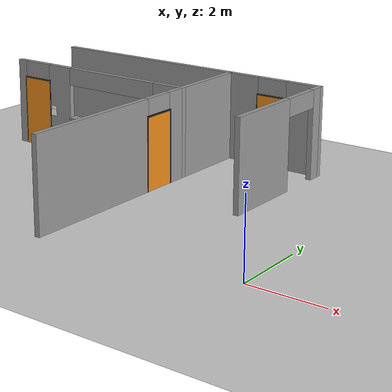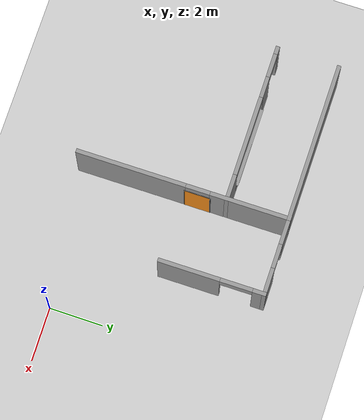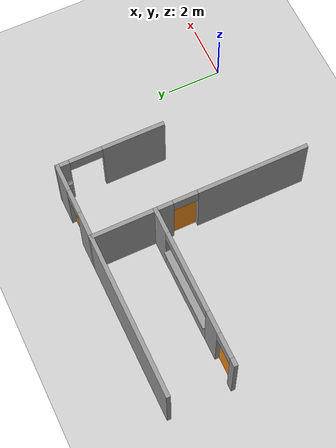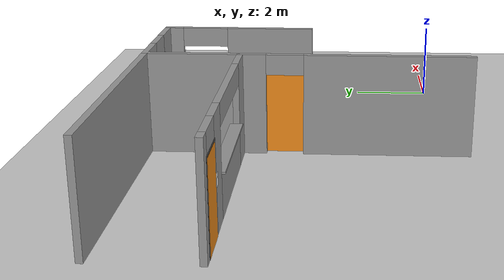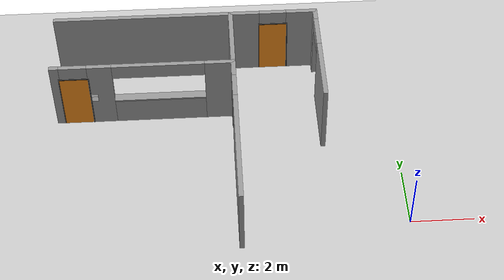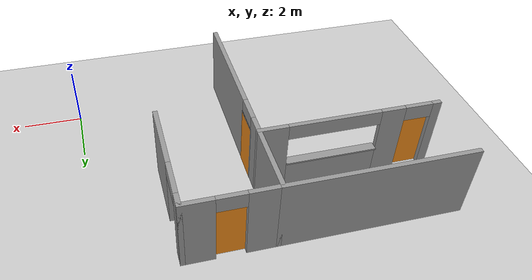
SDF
<sdf version="1.6">
 <world name="default">
  <model name="ground_plane">
   <static>1</static>
   <link name="link">
    <collision name="collision">
     <geometry><plane><normal>0 0 1</normal><size>100 100</size></plane></geometry>
     <surface><friction><ode><mu>100</mu><mu2>50</mu2></ode></friction></surface>
    </collision>
    <visual name="visual">
     <cast_shadows>0</cast_shadows>
     <geometry><plane><normal>0 0 1</normal><size>100 100</size></plane></geometry>
     <material>
      <script><uri>file://media/materials/scripts/gazebo.material</uri><name>Gazebo/Grey</name></script>
     </material>
    </visual>
   </link>
  </model>
  <model name="room_door_0_clone">
   <link name="base_link">
    <inertial>
     <pose>0 0 1.00051 0 -0 0</pose>
     <mass>2001</mass>
     <inertia><ixx>464.85</ixx><ixy>0</ixy><ixz>0</ixz><iyy>4.0501</iyy><iyz>0</iyz><izz>463.8</izz></inertia>
    </inertial>
    <collision name="base_link_fixed_joint_lump__top_post_collision">
     <pose>0 0 2.025 0 -0 0</pose>
     <geometry><box><size>0.01 1 0.05</size></box></geometry>
    </collision>
    <collision name="base_link_fixed_joint_lump__left_post_collision_1">
     <pose>0 -0.48 1 0 -0 0</pose>
     <geometry><box><size>0.01 0.04 2</size></box></geometry>
    </collision>
    <collision name="base_link_fixed_joint_lump__right_post_collision_2">
     <pose>0 0.48 1 0 -0 0</pose>
     <geometry><box><size>0.01 0.04 2</size></box></geometry>
    </collision>
    <visual name="base_link_fixed_joint_lump__top_post_visual">
     <pose>0 0 2.025 0 -0 0</pose>
     <geometry><box><size>0.01 1 0.05</size></box></geometry>
     <material>
      <script><name>Gazebo/Black</name><uri>file://media/materials/scripts/gazebo.material</uri></script>
     </material>
    </visual>
    <visual name="base_link_fixed_joint_lump__left_post_visual_1">
     <pose>0 -0.48 1 0 -0 0</pose>
     <geometry><box><size>0.01 0.04 2</size></box></geometry>
     <material>
      <script><name>Gazebo/Black</name><uri>file://media/materials/scripts/gazebo.material</uri></script>
     </material>
    </visual>
    <visual name="base_link_fixed_joint_lump__right_post_visual_2">
     <pose>0 0.48 1 0 -0 0</pose>
     <geometry><box><size>0.01 0.04 2</size></box></geometry>
     <material>
      <script><name>Gazebo/Black</name><uri>file://media/materials/scripts/gazebo.material</uri></script>
     </material>
    </visual>
   </link>
   <link name="door_front">
    <pose>0.005 -0.46 1 0 -0 0</pose>
    <inertial>
     <mass>1</mass>
     <inertia><ixx>1</ixx><ixy>0</ixy><ixz>0</ixz><iyy>1</iyy><iyz>0</iyz><izz>1</izz></inertia>
    </inertial>
    <collision name="door_front_collision">
     <pose>-0.005 0.46 0.005 0 -0 0</pose>
     <geometry><box><size>0.01 0.92 1.99</size></box></geometry>
    </collision>
    <visual name="door_front_visual">
     <pose>-0.005 0.46 0.005 0 -0 0</pose>
     <geometry><box><size>0.01 0.92 1.99</size></box></geometry>
     <material>
      <script><name>Gazebo/Orange</name><uri>file://media/materials/scripts/gazebo.material</uri></script>
     </material>
    </visual>
   </link>
   <joint name="door_front_to_left_post" type="revolute">
    <child>door_front</child>
    <parent>base_link</parent>
    <axis>
     <xyz>0 0 1</xyz>
     <limit><lower>-3.14</lower><upper>0</upper><effort>1000</effort><velocity>100</velocity></limit>
     <dynamics>
      <damping>0.5</damping>
      <friction>0</friction>
      <spring_reference>0</spring_reference>
      <spring_stiffness>0</spring_stiffness>
     </dynamics>
     <use_parent_model_frame>0</use_parent_model_frame>
    </axis>
   </joint>
   <pose>-10.4433 4.84956 -0 1e-06 -1e-06 -1.57097</pose>
  </model>
  <model name="room_door_1">
   <link name="base_link">
    <inertial>
     <pose>0 0 1.00051 0 -0 0</pose>
     <mass>2001</mass>
     <inertia><ixx>464.85</ixx><ixy>0</ixy><ixz>0</ixz><iyy>4.0501</iyy><iyz>0</iyz><izz>463.8</izz></inertia>
    </inertial>
    <collision name="base_link_fixed_joint_lump__top_post_collision">
     <pose>0 0 2.025 0 -0 0</pose>
     <geometry><box><size>0.01 1 0.05</size></box></geometry>
    </collision>
    <collision name="base_link_fixed_joint_lump__left_post_collision_1">
     <pose>0 -0.48 1 0 -0 0</pose>
     <geometry><box><size>0.01 0.04 2</size></box></geometry>
    </collision>
    <collision name="base_link_fixed_joint_lump__right_post_collision_2">
     <pose>0 0.48 1 0 -0 0</pose>
     <geometry><box><size>0.01 0.04 2</size></box></geometry>
    </collision>
    <visual name="base_link_fixed_joint_lump__top_post_visual">
     <pose>0 0 2.025 0 -0 0</pose>
     <geometry><box><size>0.01 1 0.05</size></box></geometry>
     <material>
      <script><name>Gazebo/Black</name><uri>file://media/materials/scripts/gazebo.material</uri></script>
     </material>
    </visual>
    <visual name="base_link_fixed_joint_lump__left_post_visual_1">
     <pose>0 -0.48 1 0 -0 0</pose>
     <geometry><box><size>0.01 0.04 2</size></box></geometry>
     <material>
      <script><name>Gazebo/Black</name><uri>file://media/materials/scripts/gazebo.material</uri></script>
     </material>
    </visual>
    <visual name="base_link_fixed_joint_lump__right_post_visual_2">
     <pose>0 0.48 1 0 -0 0</pose>
     <geometry><box><size>0.01 0.04 2</size></box></geometry>
     <material>
      <script><name>Gazebo/Black</name><uri>file://media/materials/scripts/gazebo.material</uri></script>
     </material>
    </visual>
   </link>
   <link name="door_front">
    <pose>0.005 0.46 1 0 -0 0</pose>
    <inertial>
     <mass>1</mass>
     <inertia><ixx>1</ixx><ixy>0</ixy><ixz>0</ixz><iyy>1</iyy><iyz>0</iyz><izz>1</izz></inertia>
    </inertial>
    <collision name="door_front_collision">
     <pose>-0.005 -0.46 0.005 0 -0 0</pose>
     <geometry><box><size>0.01 0.92 1.99</size></box></geometry>
    </collision>
    <visual name="door_front_visual">
     <pose>-0.005 -0.46 0.005 0 -0 0</pose>
     <geometry><box><size>0.01 0.92 1.99</size></box></geometry>
     <material>
      <script><name>Gazebo/Orange</name><uri>file://media/materials/scripts/gazebo.material</uri></script>
     </material>
    </visual>
   </link>
   <joint name="door_front_to_right_post" type="revolute">
    <child>door_front</child>
    <parent>base_link</parent>
    <axis>
     <xyz>0 0 1</xyz>
     <limit><lower>0</lower><upper>3.14</upper><effort>1000</effort><velocity>100</velocity></limit>
     <dynamics>
      <damping>0.5</damping>
      <friction>0</friction>
      <spring_reference>0</spring_reference>
      <spring_stiffness>0</spring_stiffness>
     </dynamics>
     <use_parent_model_frame>0</use_parent_model_frame>
    </axis>
   </joint>
   <pose>-5.18302 3.85603 -0 -1e-06 -1e-06 0.000145</pose>
  </model>
  <model name="room_door_4">
   <link name="base_link">
    <inertial>
     <pose>0 0 1.00051 0 -0 0</pose>
     <mass>2001</mass>
     <inertia><ixx>464.85</ixx><ixy>0</ixy><ixz>0</ixz><iyy>4.0501</iyy><iyz>0</iyz><izz>463.8</izz></inertia>
    </inertial>
    <collision name="base_link_fixed_joint_lump__top_post_collision">
     <pose>0 0 2.025 0 -0 0</pose>
     <geometry><box><size>0.01 1 0.05</size></box></geometry>
    </collision>
    <collision name="base_link_fixed_joint_lump__left_post_collision_1">
     <pose>0 -0.48 1 0 -0 0</pose>
     <geometry><box><size>0.01 0.04 2</size></box></geometry>
    </collision>
    <collision name="base_link_fixed_joint_lump__right_post_collision_2">
     <pose>0 0.48 1 0 -0 0</pose>
     <geometry><box><size>0.01 0.04 2</size></box></geometry>
    </collision>
    <visual name="base_link_fixed_joint_lump__top_post_visual">
     <pose>0 0 2.025 0 -0 0</pose>
     <geometry><box><size>0.01 1 0.05</size></box></geometry>
     <material>
      <script><name>Gazebo/Black</name><uri>file://media/materials/scripts/gazebo.material</uri></script>
     </material>
    </visual>
    <visual name="base_link_fixed_joint_lump__left_post_visual_1">
     <pose>0 -0.48 1 0 -0 0</pose>
     <geometry><box><size>0.01 0.04 2</size></box></geometry>
     <material>
      <script><name>Gazebo/Black</name><uri>file://media/materials/scripts/gazebo.material</uri></script>
     </material>
    </visual>
    <visual name="base_link_fixed_joint_lump__right_post_visual_2">
     <pose>0 0.48 1 0 -0 0</pose>
     <geometry><box><size>0.01 0.04 2</size></box></geometry>
     <material>
      <script><name>Gazebo/Black</name><uri>file://media/materials/scripts/gazebo.material</uri></script>
     </material>
    </visual>
   </link>
   <link name="door_front">
    <pose>0.005 -0.46 1 0 -0 0</pose>
    <inertial>
     <mass>1</mass>
     <inertia><ixx>1</ixx><ixy>0</ixy><ixz>0</ixz><iyy>1</iyy><iyz>0</iyz><izz>1</izz></inertia>
    </inertial>
    <collision name="door_front_collision">
     <pose>-0.005 0.46 0.005 0 -0 0</pose>
     <geometry><box><size>0.01 0.92 1.99</size></box></geometry>
    </collision>
    <visual name="door_front_visual">
     <pose>-0.005 0.46 0.005 0 -0 0</pose>
     <geometry><box><size>0.01 0.92 1.99</size></box></geometry>
     <material>
      <script><name>Gazebo/Orange</name><uri>file://media/materials/scripts/gazebo.material</uri></script>
     </material>
    </visual>
   </link>
   <joint name="door_front_to_left_post" type="revolute">
    <child>door_front</child>
    <parent>base_link</parent>
    <axis>
     <xyz>0 0 1</xyz>
     <limit><lower>-3.14</lower><upper>0</upper><effort>1000</effort><velocity>100</velocity></limit>
     <dynamics>
      <damping>0.5</damping>
      <friction>0</friction>
      <spring_reference>0</spring_reference>
      <spring_stiffness>0</spring_stiffness>
     </dynamics>
     <use_parent_model_frame>0</use_parent_model_frame>
    </axis>
   </joint>
   <pose>-3.83625 7.1492 -0 -1e-06 -1e-06 -1.57132</pose>
  </model>
  <model name="hospital_walls">
   <link name="Wall_0">
    <pose>-8.2 7.275 0 0 -0 0</pose>
    <visual name="Wall_0_Visual">
     <pose>0 0 1.25 0 -0 0</pose>
     <geometry><box><size>6 0.15 2.5</size></box></geometry>
     <material>
      <script><uri>file://media/materials/scripts/gazebo.material</uri><name>Gazebo/Grey</name></script>
      <ambient>1 1 1 1</ambient>
      <shader type="pixel"/>
     </material>
     <meta><layer>0</layer></meta>
    </visual>
    <collision name="Wall_0_Collision">
     <pose>0 0 1.25 0 -0 0</pose>
     <geometry><box><size>6 0.15 2.5</size></box></geometry>
     <surface>
      <friction>
       <ode><mu>1</mu><mu2>1</mu2><fdir1>0 0 0</fdir1><slip1>0</slip1><slip2>0</slip2></ode>
       <torsional>
        <coefficient>1</coefficient>
        <patch_radius>0</patch_radius>
        <surface_radius>0</surface_radius>
        <use_patch_radius>1</use_patch_radius>
        <ode><slip>0</slip></ode>
       </torsional>
      </friction>
      <bounce><restitution_coefficient>0</restitution_coefficient><threshold>1e+06</threshold></bounce>
      <contact>
       <collide_without_contact>0</collide_without_contact>
       <collide_without_contact_bitmask>1</collide_without_contact_bitmask>
       <collide_bitmask>1</collide_bitmask>
       <ode>
        <soft_cfm>0</soft_cfm>
        <soft_erp>0.2</soft_erp>
        <kp>1e+13</kp>
        <kd>1</kd>
        <max_vel>0.01</max_vel>
        <min_depth>0</min_depth>
       </ode>
       <bullet>
        <split_impulse>1</split_impulse>
        <split_impulse_penetration_threshold>-0.01</split_impulse_penetration_threshold>
        <soft_cfm>0</soft_cfm>
        <soft_erp>0.2</soft_erp>
        <kp>1e+13</kp>
        <kd>1</kd>
       </bullet>
      </contact>
     </surface>
    </collision>
   </link>
   <link name="Wall_0_clone">
    <pose>-8.2 4.975 0 0 -0 0</pose>
    <inertial>
     <mass>1</mass>
     <inertia><ixx>1</ixx><ixy>0</ixy><ixz>0</ixz><iyy>1</iyy><iyz>0</iyz><izz>1</izz></inertia>
    </inertial>
    <visual name="ModelPreview_4::Wall_0_clone::visual_5">
     <pose>-2.85 0 1.25 0 -0 0</pose>
     <geometry><box><size>0.3 0.15 2.5</size></box></geometry>
     <material>
      <script><uri>file://media/materials/scripts/gazebo.material</uri><name>Gazebo/Grey</name></script>
      <ambient>1 1 1 1</ambient>
      <shader type="vertex"><normal_map>__default__</normal_map></shader>
      <diffuse>0.7 0.7 0.7 1</diffuse>
      <specular>0.01 0.01 0.01 1</specular>
      <emissive>0 0 0 1</emissive>
     </material>
     <meta><layer>0</layer></meta>
    </visual>
    <visual name="Wall_0_Visual">
     <pose>2.5 0 1.25 0 -0 0</pose>
     <geometry><box><size>1 0.15 2.5</size></box></geometry>
     <material>
      <script><uri>file://media/materials/scripts/gazebo.material</uri><name>Gazebo/Grey</name></script>
      <ambient>1 1 1 1</ambient>
      <shader type="vertex"><normal_map>__default__</normal_map></shader>
      <diffuse>0.7 0.7 0.7 1</diffuse>
      <specular>0.01 0.01 0.01 1</specular>
      <emissive>0 0 0 1</emissive>
     </material>
     <meta><layer>0</layer></meta>
    </visual>
    <visual name="ModelPreview_4::Wall_0_clone::visual_4">
     <pose>-2.25 0 2.25 0 -0 0</pose>
     <geometry><box><size>0.9 0.15 0.5</size></box></geometry>
     <material>
      <script><uri>file://media/materials/scripts/gazebo.material</uri><name>Gazebo/Grey</name></script>
      <ambient>1 1 1 1</ambient>
      <shader type="vertex"><normal_map>__default__</normal_map></shader>
      <diffuse>0.7 0.7 0.7 1</diffuse>
      <specular>0.01 0.01 0.01 1</specular>
      <emissive>0 0 0 1</emissive>
     </material>
     <meta><layer>0</layer></meta>
    </visual>
    <visual name="ModelPreview_4::Wall_0_clone::visual_2">
     <pose>0.5 0 2.25 0 -0 0</pose>
     <geometry><box><size>3 0.15 0.5</size></box></geometry>
     <material>
      <script><uri>file://media/materials/scripts/gazebo.material</uri><name>Gazebo/Grey</name></script>
      <ambient>1 1 1 1</ambient>
      <shader type="vertex"><normal_map>__default__</normal_map></shader>
      <diffuse>0.7 0.7 0.7 1</diffuse>
      <specular>0.01 0.01 0.01 1</specular>
      <emissive>0 0 0 1</emissive>
     </material>
     <meta><layer>0</layer></meta>
    </visual>
    <visual name="ModelPreview_4::Wall_0_clone::visual_3">
     <pose>-1.4 0 1.25 0 -0 0</pose>
     <geometry><box><size>0.8 0.15 2.5</size></box></geometry>
     <material>
      <script><uri>file://media/materials/scripts/gazebo.material</uri><name>Gazebo/Grey</name></script>
      <ambient>1 1 1 1</ambient>
      <shader type="vertex"><normal_map>__default__</normal_map></shader>
      <diffuse>0.7 0.7 0.7 1</diffuse>
      <specular>0.01 0.01 0.01 1</specular>
      <emissive>0 0 0 1</emissive>
     </material>
     <meta><layer>0</layer></meta>
    </visual>
    <visual name="ModelPreview_4::Wall_0_clone::visual_1">
     <pose>0.5 0 0.5 0 -0 0</pose>
     <geometry><box><size>3 0.15 1</size></box></geometry>
     <material>
      <script><uri>file://media/materials/scripts/gazebo.material</uri><name>Gazebo/Grey</name></script>
      <ambient>1 1 1 1</ambient>
      <shader type="vertex"><normal_map>__default__</normal_map></shader>
      <diffuse>0.7 0.7 0.7 1</diffuse>
      <specular>0.01 0.01 0.01 1</specular>
      <emissive>0 0 0 1</emissive>
     </material>
     <meta><layer>0</layer></meta>
    </visual>
    <visual name="ModelPreview_10::Wall_0_clone::visual_6">
     <pose>0.5 0 1.025 0 -0 0</pose>
     <geometry><box><size>3 0.3 0.05</size></box></geometry>
     <material>
      <script><uri>file://media/materials/scripts/gazebo.material</uri><name>Gazebo/Grey</name></script>
      <ambient>1 1 1 1</ambient>
      <shader type="vertex"><normal_map>__default__</normal_map></shader>
      <diffuse>0.7 0.7 0.7 1</diffuse>
      <specular>0.01 0.01 0.01 1</specular>
      <emissive>0 0 0 1</emissive>
     </material>
     <meta><layer>0</layer></meta>
    </visual>
    <collision name="collision_3">
     <pose>-1.4 0 1.25 0 -0 0</pose>
     <geometry><box><size>0.8 0.15 2.5</size></box></geometry>
     <surface>
      <friction>
       <ode><mu>1</mu><mu2>1</mu2><fdir1>0 0 0</fdir1><slip1>0</slip1><slip2>0</slip2></ode>
       <torsional>
        <coefficient>1</coefficient>
        <patch_radius>0</patch_radius>
        <surface_radius>0</surface_radius>
        <use_patch_radius>1</use_patch_radius>
        <ode><slip>0</slip></ode>
       </torsional>
      </friction>
      <bounce><restitution_coefficient>0</restitution_coefficient><threshold>1e+06</threshold></bounce>
      <contact>
       <collide_without_contact>0</collide_without_contact>
       <collide_without_contact_bitmask>1</collide_without_contact_bitmask>
       <collide_bitmask>1</collide_bitmask>
       <ode>
        <soft_cfm>0</soft_cfm>
        <soft_erp>0.2</soft_erp>
        <kp>1e+13</kp>
        <kd>1</kd>
        <max_vel>0.01</max_vel>
        <min_depth>0</min_depth>
       </ode>
       <bullet>
        <split_impulse>1</split_impulse>
        <split_impulse_penetration_threshold>-0.01</split_impulse_penetration_threshold>
        <soft_cfm>0</soft_cfm>
        <soft_erp>0.2</soft_erp>
        <kp>1e+13</kp>
        <kd>1</kd>
       </bullet>
      </contact>
     </surface>
    </collision>
    <collision name="collision_2">
     <pose>0.5 0 2.25 0 -0 0</pose>
     <geometry><box><size>3 0.15 0.5</size></box></geometry>
     <surface>
      <friction>
       <ode><mu>1</mu><mu2>1</mu2><fdir1>0 0 0</fdir1><slip1>0</slip1><slip2>0</slip2></ode>
       <torsional>
        <coefficient>1</coefficient>
        <patch_radius>0</patch_radius>
        <surface_radius>0</surface_radius>
        <use_patch_radius>1</use_patch_radius>
        <ode><slip>0</slip></ode>
       </torsional>
      </friction>
      <bounce><restitution_coefficient>0</restitution_coefficient><threshold>1e+06</threshold></bounce>
      <contact>
       <collide_without_contact>0</collide_without_contact>
       <collide_without_contact_bitmask>1</collide_without_contact_bitmask>
       <collide_bitmask>1</collide_bitmask>
       <ode>
        <soft_cfm>0</soft_cfm>
        <soft_erp>0.2</soft_erp>
        <kp>1e+13</kp>
        <kd>1</kd>
        <max_vel>0.01</max_vel>
        <min_depth>0</min_depth>
       </ode>
       <bullet>
        <split_impulse>1</split_impulse>
        <split_impulse_penetration_threshold>-0.01</split_impulse_penetration_threshold>
        <soft_cfm>0</soft_cfm>
        <soft_erp>0.2</soft_erp>
        <kp>1e+13</kp>
        <kd>1</kd>
       </bullet>
      </contact>
     </surface>
    </collision>
    <collision name="collision_4">
     <pose>-2.25 0 2.25 0 -0 0</pose>
     <geometry><box><size>0.9 0.15 0.5</size></box></geometry>
     <surface>
      <friction>
       <ode><mu>1</mu><mu2>1</mu2><fdir1>0 0 0</fdir1><slip1>0</slip1><slip2>0</slip2></ode>
       <torsional>
        <coefficient>1</coefficient>
        <patch_radius>0</patch_radius>
        <surface_radius>0</surface_radius>
        <use_patch_radius>1</use_patch_radius>
        <ode><slip>0</slip></ode>
       </torsional>
      </friction>
      <bounce><restitution_coefficient>0</restitution_coefficient><threshold>1e+06</threshold></bounce>
      <contact>
       <collide_without_contact>0</collide_without_contact>
       <collide_without_contact_bitmask>1</collide_without_contact_bitmask>
       <collide_bitmask>1</collide_bitmask>
       <ode>
        <soft_cfm>0</soft_cfm>
        <soft_erp>0.2</soft_erp>
        <kp>1e+13</kp>
        <kd>1</kd>
        <max_vel>0.01</max_vel>
        <min_depth>0</min_depth>
       </ode>
       <bullet>
        <split_impulse>1</split_impulse>
        <split_impulse_penetration_threshold>-0.01</split_impulse_penetration_threshold>
        <soft_cfm>0</soft_cfm>
        <soft_erp>0.2</soft_erp>
        <kp>1e+13</kp>
        <kd>1</kd>
       </bullet>
      </contact>
     </surface>
    </collision>
    <collision name="collision_6">
     <pose>0.5 0 1.025 0 -0 0</pose>
     <geometry><box><size>3 0.3 0.05</size></box></geometry>
     <surface>
      <friction>
       <ode><mu>1</mu><mu2>1</mu2><fdir1>0 0 0</fdir1><slip1>0</slip1><slip2>0</slip2></ode>
       <torsional>
        <coefficient>1</coefficient>
        <patch_radius>0</patch_radius>
        <surface_radius>0</surface_radius>
        <use_patch_radius>1</use_patch_radius>
        <ode><slip>0</slip></ode>
       </torsional>
      </friction>
      <bounce><restitution_coefficient>0</restitution_coefficient><threshold>1e+06</threshold></bounce>
      <contact>
       <collide_without_contact>0</collide_without_contact>
       <collide_without_contact_bitmask>1</collide_without_contact_bitmask>
       <collide_bitmask>1</collide_bitmask>
       <ode>
        <soft_cfm>0</soft_cfm>
        <soft_erp>0.2</soft_erp>
        <kp>1e+13</kp>
        <kd>1</kd>
        <max_vel>0.01</max_vel>
        <min_depth>0</min_depth>
       </ode>
       <bullet>
        <split_impulse>1</split_impulse>
        <split_impulse_penetration_threshold>-0.01</split_impulse_penetration_threshold>
        <soft_cfm>0</soft_cfm>
        <soft_erp>0.2</soft_erp>
        <kp>1e+13</kp>
        <kd>1</kd>
       </bullet>
      </contact>
     </surface>
    </collision>
    <collision name="Wall_0_Collision">
     <pose>2.5 0 1.25 0 -0 0</pose>
     <geometry><box><size>1 0.15 2.5</size></box></geometry>
     <surface>
      <friction>
       <ode><mu>1</mu><mu2>1</mu2><fdir1>0 0 0</fdir1><slip1>0</slip1><slip2>0</slip2></ode>
       <torsional>
        <coefficient>1</coefficient>
        <patch_radius>0</patch_radius>
        <surface_radius>0</surface_radius>
        <use_patch_radius>1</use_patch_radius>
        <ode><slip>0</slip></ode>
       </torsional>
      </friction>
      <bounce><restitution_coefficient>0</restitution_coefficient><threshold>1e+06</threshold></bounce>
      <contact>
       <collide_without_contact>0</collide_without_contact>
       <collide_without_contact_bitmask>1</collide_without_contact_bitmask>
       <collide_bitmask>1</collide_bitmask>
       <ode>
        <soft_cfm>0</soft_cfm>
        <soft_erp>0.2</soft_erp>
        <kp>1e+13</kp>
        <kd>1</kd>
        <max_vel>0.01</max_vel>
        <min_depth>0</min_depth>
       </ode>
       <bullet>
        <split_impulse>1</split_impulse>
        <split_impulse_penetration_threshold>-0.01</split_impulse_penetration_threshold>
        <soft_cfm>0</soft_cfm>
        <soft_erp>0.2</soft_erp>
        <kp>1e+13</kp>
        <kd>1</kd>
       </bullet>
      </contact>
     </surface>
    </collision>
    <collision name="collision_1">
     <pose>0.5 0 0.5 0 -0 0</pose>
     <geometry><box><size>3 0.15 1</size></box></geometry>
     <surface>
      <friction>
       <ode><mu>1</mu><mu2>1</mu2><fdir1>0 0 0</fdir1><slip1>0</slip1><slip2>0</slip2></ode>
       <torsional>
        <coefficient>1</coefficient>
        <patch_radius>0</patch_radius>
        <surface_radius>0</surface_radius>
        <use_patch_radius>1</use_patch_radius>
        <ode><slip>0</slip></ode>
       </torsional>
      </friction>
      <bounce><restitution_coefficient>0</restitution_coefficient><threshold>1e+06</threshold></bounce>
      <contact>
       <collide_without_contact>0</collide_without_contact>
       <collide_without_contact_bitmask>1</collide_without_contact_bitmask>
       <collide_bitmask>1</collide_bitmask>
       <ode>
        <soft_cfm>0</soft_cfm>
        <soft_erp>0.2</soft_erp>
        <kp>1e+13</kp>
        <kd>1</kd>
        <max_vel>0.01</max_vel>
        <min_depth>0</min_depth>
       </ode>
       <bullet>
        <split_impulse>1</split_impulse>
        <split_impulse_penetration_threshold>-0.01</split_impulse_penetration_threshold>
        <soft_cfm>0</soft_cfm>
        <soft_erp>0.2</soft_erp>
        <kp>1e+13</kp>
        <kd>1</kd>
       </bullet>
      </contact>
     </surface>
    </collision>
    <collision name="collision_5">
     <pose>-2.85 0 1.25 0 -0 0</pose>
     <geometry><box><size>0.3 0.15 2.5</size></box></geometry>
     <surface>
      <friction>
       <ode><mu>1</mu><mu2>1</mu2><fdir1>0 0 0</fdir1><slip1>0</slip1><slip2>0</slip2></ode>
       <torsional>
        <coefficient>1</coefficient>
        <patch_radius>0</patch_radius>
        <surface_radius>0</surface_radius>
        <use_patch_radius>1</use_patch_radius>
        <ode><slip>0</slip></ode>
       </torsional>
      </friction>
      <bounce><restitution_coefficient>0</restitution_coefficient><threshold>1e+06</threshold></bounce>
      <contact>
       <collide_without_contact>0</collide_without_contact>
       <collide_without_contact_bitmask>1</collide_without_contact_bitmask>
       <collide_bitmask>1</collide_bitmask>
       <ode>
        <soft_cfm>0</soft_cfm>
        <soft_erp>0.2</soft_erp>
        <kp>1e+13</kp>
        <kd>1</kd>
        <max_vel>0.01</max_vel>
        <min_depth>0</min_depth>
       </ode>
       <bullet>
        <split_impulse>1</split_impulse>
        <split_impulse_penetration_threshold>-0.01</split_impulse_penetration_threshold>
        <soft_cfm>0</soft_cfm>
        <soft_erp>0.2</soft_erp>
        <kp>1e+13</kp>
        <kd>1</kd>
       </bullet>
      </contact>
     </surface>
    </collision>
   </link>
   <link name="Wall_12">
    <pose>-2.425 5.35 0 0 -0 1.5708</pose>
    <visual name="Wall_12_Visual_0">
     <pose>-0.85 0 1.25 0 -0 0</pose>
     <geometry><box><size>2.3 0.15 2.5</size></box></geometry>
     <material>
      <script><uri>file://media/materials/scripts/gazebo.material</uri><name>Gazebo/Grey</name></script>
      <ambient>1 1 1 1</ambient>
      <shader type="pixel"/>
     </material>
     <meta><layer>0</layer></meta>
    </visual>
    <visual name="Wall_12_Visual_1">
     <pose>1.75 0 1.25 0 -0 0</pose>
     <geometry><box><size>0.5 0.15 2.5</size></box></geometry>
     <material>
      <script><uri>file://media/materials/scripts/gazebo.material</uri><name>Gazebo/Grey</name></script>
      <ambient>1 1 1 1</ambient>
      <shader type="pixel"/>
     </material>
     <meta><layer>0</layer></meta>
    </visual>
    <visual name="Wall_12_Visual_2">
     <pose>0.9 0 2.25 0 -0 0</pose>
     <geometry><box><size>1.2 0.15 0.5</size></box></geometry>
     <material>
      <script><uri>file://media/materials/scripts/gazebo.material</uri><name>Gazebo/Grey</name></script>
      <ambient>1 1 1 1</ambient>
      <shader type="pixel"/>
     </material>
     <meta><layer>0</layer></meta>
    </visual>
    <collision name="Wall_12_Collision_1">
     <pose>1.75 0 1.25 0 -0 0</pose>
     <geometry><box><size>0.5 0.15 2.5</size></box></geometry>
     <surface>
      <friction>
       <ode><mu>1</mu><mu2>1</mu2><fdir1>0 0 0</fdir1><slip1>0</slip1><slip2>0</slip2></ode>
       <torsional>
        <coefficient>1</coefficient>
        <patch_radius>0</patch_radius>
        <surface_radius>0</surface_radius>
        <use_patch_radius>1</use_patch_radius>
        <ode><slip>0</slip></ode>
       </torsional>
      </friction>
      <bounce><restitution_coefficient>0</restitution_coefficient><threshold>1e+06</threshold></bounce>
      <contact>
       <collide_without_contact>0</collide_without_contact>
       <collide_without_contact_bitmask>1</collide_without_contact_bitmask>
       <collide_bitmask>1</collide_bitmask>
       <ode>
        <soft_cfm>0</soft_cfm>
        <soft_erp>0.2</soft_erp>
        <kp>1e+13</kp>
        <kd>1</kd>
        <max_vel>0.01</max_vel>
        <min_depth>0</min_depth>
       </ode>
       <bullet>
        <split_impulse>1</split_impulse>
        <split_impulse_penetration_threshold>-0.01</split_impulse_penetration_threshold>
        <soft_cfm>0</soft_cfm>
        <soft_erp>0.2</soft_erp>
        <kp>1e+13</kp>
        <kd>1</kd>
       </bullet>
      </contact>
     </surface>
    </collision>
    <collision name="Wall_12_Collision_2">
     <pose>0.9 0 2.25 0 -0 0</pose>
     <geometry><box><size>1.2 0.15 0.5</size></box></geometry>
     <surface>
      <friction>
       <ode><mu>1</mu><mu2>1</mu2><fdir1>0 0 0</fdir1><slip1>0</slip1><slip2>0</slip2></ode>
       <torsional>
        <coefficient>1</coefficient>
        <patch_radius>0</patch_radius>
        <surface_radius>0</surface_radius>
        <use_patch_radius>1</use_patch_radius>
        <ode><slip>0</slip></ode>
       </torsional>
      </friction>
      <bounce><restitution_coefficient>0</restitution_coefficient><threshold>1e+06</threshold></bounce>
      <contact>
       <collide_without_contact>0</collide_without_contact>
       <collide_without_contact_bitmask>1</collide_without_contact_bitmask>
       <collide_bitmask>1</collide_bitmask>
       <ode>
        <soft_cfm>0</soft_cfm>
        <soft_erp>0.2</soft_erp>
        <kp>1e+13</kp>
        <kd>1</kd>
        <max_vel>0.01</max_vel>
        <min_depth>0</min_depth>
       </ode>
       <bullet>
        <split_impulse>1</split_impulse>
        <split_impulse_penetration_threshold>-0.01</split_impulse_penetration_threshold>
        <soft_cfm>0</soft_cfm>
        <soft_erp>0.2</soft_erp>
        <kp>1e+13</kp>
        <kd>1</kd>
       </bullet>
      </contact>
     </surface>
    </collision>
    <collision name="Wall_12_Collision_0">
     <pose>-0.85 0 1.25 0 -0 0</pose>
     <geometry><box><size>2.3 0.15 2.5</size></box></geometry>
     <surface>
      <friction>
       <ode><mu>1</mu><mu2>1</mu2><fdir1>0 0 0</fdir1><slip1>0</slip1><slip2>0</slip2></ode>
       <torsional>
        <coefficient>1</coefficient>
        <patch_radius>0</patch_radius>
        <surface_radius>0</surface_radius>
        <use_patch_radius>1</use_patch_radius>
        <ode><slip>0</slip></ode>
       </torsional>
      </friction>
      <bounce><restitution_coefficient>0</restitution_coefficient><threshold>1e+06</threshold></bounce>
      <contact>
       <collide_without_contact>0</collide_without_contact>
       <collide_without_contact_bitmask>1</collide_without_contact_bitmask>
       <collide_bitmask>1</collide_bitmask>
       <ode>
        <soft_cfm>0</soft_cfm>
        <soft_erp>0.2</soft_erp>
        <kp>1e+13</kp>
        <kd>1</kd>
        <max_vel>0.01</max_vel>
        <min_depth>0</min_depth>
       </ode>
       <bullet>
        <split_impulse>1</split_impulse>
        <split_impulse_penetration_threshold>-0.01</split_impulse_penetration_threshold>
        <soft_cfm>0</soft_cfm>
        <soft_erp>0.2</soft_erp>
        <kp>1e+13</kp>
        <kd>1</kd>
       </bullet>
      </contact>
     </surface>
    </collision>
   </link>
   <link name="Wall_6">
    <pose>-5.275 3.35 0 0 -0 1.5708</pose>
    <inertial>
     <mass>1</mass>
     <inertia><ixx>1</ixx><ixy>0</ixy><ixz>0</ixz><iyy>1</iyy><iyz>0</iyz><izz>1</izz></inertia>
    </inertial>
    <visual name="Wall_6_Visual">
     <pose>2.5 0 1.25 0 -0 0</pose>
     <geometry><box><size>3 0.15 2.5</size></box></geometry>
     <material>
      <script><uri>file://media/materials/scripts/gazebo.material</uri><name>Gazebo/Grey</name></script>
      <ambient>1 1 1 1</ambient>
      <shader type="vertex"><normal_map>__default__</normal_map></shader>
      <diffuse>0.7 0.7 0.7 1</diffuse>
      <specular>0.01 0.01 0.01 1</specular>
      <emissive>0 0 0 1</emissive>
     </material>
     <meta><layer>0</layer></meta>
    </visual>
    <visual name="ModelPreview_13::Wall_6::visual_2">
     <pose>-1.95 0 1.25 0 -0 0</pose>
     <geometry><box><size>4.1 0.15 2.5</size></box></geometry>
     <material>
      <script><uri>file://media/materials/scripts/gazebo.material</uri><name>Gazebo/Grey</name></script>
      <ambient>1 1 1 1</ambient>
      <shader type="vertex"><normal_map>__default__</normal_map></shader>
      <diffuse>0.7 0.7 0.7 1</diffuse>
      <specular>0.01 0.01 0.01 1</specular>
      <emissive>0 0 0 1</emissive>
     </material>
     <meta><layer>0</layer></meta>
    </visual>
    <visual name="ModelPreview_13::Wall_6::visual_1">
     <pose>0.55 0 2.25 0 -0 0</pose>
     <geometry><box><size>0.9 0.15 0.5</size></box></geometry>
     <material>
      <script><uri>file://media/materials/scripts/gazebo.material</uri><name>Gazebo/Grey</name></script>
      <ambient>1 1 1 1</ambient>
      <shader type="vertex"><normal_map>__default__</normal_map></shader>
      <diffuse>0.7 0.7 0.7 1</diffuse>
      <specular>0.01 0.01 0.01 1</specular>
      <emissive>0 0 0 1</emissive>
     </material>
     <meta><layer>0</layer></meta>
    </visual>
    <collision name="collision_1">
     <pose>0.55 0 2.25 0 -0 0</pose>
     <geometry><box><size>0.9 0.15 0.5</size></box></geometry>
     <surface>
      <friction>
       <ode><mu>1</mu><mu2>1</mu2><fdir1>0 0 0</fdir1><slip1>0</slip1><slip2>0</slip2></ode>
       <torsional>
        <coefficient>1</coefficient>
        <patch_radius>0</patch_radius>
        <surface_radius>0</surface_radius>
        <use_patch_radius>1</use_patch_radius>
        <ode><slip>0</slip></ode>
       </torsional>
      </friction>
      <bounce><restitution_coefficient>0</restitution_coefficient><threshold>1e+06</threshold></bounce>
      <contact>
       <collide_without_contact>0</collide_without_contact>
       <collide_without_contact_bitmask>1</collide_without_contact_bitmask>
       <collide_bitmask>1</collide_bitmask>
       <ode>
        <soft_cfm>0</soft_cfm>
        <soft_erp>0.2</soft_erp>
        <kp>1e+13</kp>
        <kd>1</kd>
        <max_vel>0.01</max_vel>
        <min_depth>0</min_depth>
       </ode>
       <bullet>
        <split_impulse>1</split_impulse>
        <split_impulse_penetration_threshold>-0.01</split_impulse_penetration_threshold>
        <soft_cfm>0</soft_cfm>
        <soft_erp>0.2</soft_erp>
        <kp>1e+13</kp>
        <kd>1</kd>
       </bullet>
      </contact>
     </surface>
    </collision>
    <collision name="collision_2">
     <pose>-1.95 0 1.25 0 -0 0</pose>
     <geometry><box><size>4.1 0.15 2.5</size></box></geometry>
     <surface>
      <friction>
       <ode><mu>1</mu><mu2>1</mu2><fdir1>0 0 0</fdir1><slip1>0</slip1><slip2>0</slip2></ode>
       <torsional>
        <coefficient>1</coefficient>
        <patch_radius>0</patch_radius>
        <surface_radius>0</surface_radius>
        <use_patch_radius>1</use_patch_radius>
        <ode><slip>0</slip></ode>
       </torsional>
      </friction>
      <bounce><restitution_coefficient>0</restitution_coefficient><threshold>1e+06</threshold></bounce>
      <contact>
       <collide_without_contact>0</collide_without_contact>
       <collide_without_contact_bitmask>1</collide_without_contact_bitmask>
       <collide_bitmask>1</collide_bitmask>
       <ode>
        <soft_cfm>0</soft_cfm>
        <soft_erp>0.2</soft_erp>
        <kp>1e+13</kp>
        <kd>1</kd>
        <max_vel>0.01</max_vel>
        <min_depth>0</min_depth>
       </ode>
       <bullet>
        <split_impulse>1</split_impulse>
        <split_impulse_penetration_threshold>-0.01</split_impulse_penetration_threshold>
        <soft_cfm>0</soft_cfm>
        <soft_erp>0.2</soft_erp>
        <kp>1e+13</kp>
        <kd>1</kd>
       </bullet>
      </contact>
     </surface>
    </collision>
    <collision name="Wall_6_Collision">
     <pose>2.5 0 1.25 0 -0 0</pose>
     <geometry><box><size>3 0.15 2.5</size></box></geometry>
     <surface>
      <friction>
       <ode><mu>1</mu><mu2>1</mu2><fdir1>0 0 0</fdir1><slip1>0</slip1><slip2>0</slip2></ode>
       <torsional>
        <coefficient>1</coefficient>
        <patch_radius>0</patch_radius>
        <surface_radius>0</surface_radius>
        <use_patch_radius>1</use_patch_radius>
        <ode><slip>0</slip></ode>
       </torsional>
      </friction>
      <bounce><restitution_coefficient>0</restitution_coefficient><threshold>1e+06</threshold></bounce>
      <contact>
       <collide_without_contact>0</collide_without_contact>
       <collide_without_contact_bitmask>1</collide_without_contact_bitmask>
       <collide_bitmask>1</collide_bitmask>
       <ode>
        <soft_cfm>0</soft_cfm>
        <soft_erp>0.2</soft_erp>
        <kp>1e+13</kp>
        <kd>1</kd>
        <max_vel>0.01</max_vel>
        <min_depth>0</min_depth>
       </ode>
       <bullet>
        <split_impulse>1</split_impulse>
        <split_impulse_penetration_threshold>-0.01</split_impulse_penetration_threshold>
        <soft_cfm>0</soft_cfm>
        <soft_erp>0.2</soft_erp>
        <kp>1e+13</kp>
        <kd>1</kd>
       </bullet>
      </contact>
     </surface>
    </collision>
   </link>
   <link name="Wall_8">
    <pose>-3.85 7.275 0 0 -0 0</pose>
    <visual name="Wall_8_Visual_1">
     <pose>0.975 0 1.25 0 -0 0</pose>
     <geometry><box><size>1.05 0.15 2.5</size></box></geometry>
     <material>
      <script><uri>file://media/materials/scripts/gazebo.material</uri><name>Gazebo/Grey</name></script>
      <ambient>1 1 1 1</ambient>
      <shader type="pixel"/>
     </material>
     <meta><layer>0</layer></meta>
    </visual>
    <visual name="Wall_8_Visual_2">
     <pose>0 0 2.25 0 -0 0</pose>
     <geometry><box><size>0.9 0.15 0.5</size></box></geometry>
     <material>
      <script><uri>file://media/materials/scripts/gazebo.material</uri><name>Gazebo/Grey</name></script>
      <ambient>1 1 1 1</ambient>
      <shader type="pixel"/>
     </material>
     <meta><layer>0</layer></meta>
    </visual>
    <visual name="Wall_8_Visual_0">
     <pose>-0.975 0 1.25 0 -0 0</pose>
     <geometry><box><size>1.05 0.15 2.5</size></box></geometry>
     <material>
      <script><uri>file://media/materials/scripts/gazebo.material</uri><name>Gazebo/Grey</name></script>
      <ambient>1 1 1 1</ambient>
      <shader type="pixel"/>
     </material>
     <meta><layer>0</layer></meta>
    </visual>
    <collision name="Wall_8_Collision_1">
     <pose>0.975 0 1.25 0 -0 0</pose>
     <geometry><box><size>1.05 0.15 2.5</size></box></geometry>
     <surface>
      <friction>
       <ode><mu>1</mu><mu2>1</mu2><fdir1>0 0 0</fdir1><slip1>0</slip1><slip2>0</slip2></ode>
       <torsional>
        <coefficient>1</coefficient>
        <patch_radius>0</patch_radius>
        <surface_radius>0</surface_radius>
        <use_patch_radius>1</use_patch_radius>
        <ode><slip>0</slip></ode>
       </torsional>
      </friction>
      <bounce><restitution_coefficient>0</restitution_coefficient><threshold>1e+06</threshold></bounce>
      <contact>
       <collide_without_contact>0</collide_without_contact>
       <collide_without_contact_bitmask>1</collide_without_contact_bitmask>
       <collide_bitmask>1</collide_bitmask>
       <ode>
        <soft_cfm>0</soft_cfm>
        <soft_erp>0.2</soft_erp>
        <kp>1e+13</kp>
        <kd>1</kd>
        <max_vel>0.01</max_vel>
        <min_depth>0</min_depth>
       </ode>
       <bullet>
        <split_impulse>1</split_impulse>
        <split_impulse_penetration_threshold>-0.01</split_impulse_penetration_threshold>
        <soft_cfm>0</soft_cfm>
        <soft_erp>0.2</soft_erp>
        <kp>1e+13</kp>
        <kd>1</kd>
       </bullet>
      </contact>
     </surface>
    </collision>
    <collision name="Wall_8_Collision_0">
     <pose>-0.975 0 1.25 0 -0 0</pose>
     <geometry><box><size>1.05 0.15 2.5</size></box></geometry>
     <surface>
      <friction>
       <ode><mu>1</mu><mu2>1</mu2><fdir1>0 0 0</fdir1><slip1>0</slip1><slip2>0</slip2></ode>
       <torsional>
        <coefficient>1</coefficient>
        <patch_radius>0</patch_radius>
        <surface_radius>0</surface_radius>
        <use_patch_radius>1</use_patch_radius>
        <ode><slip>0</slip></ode>
       </torsional>
      </friction>
      <bounce><restitution_coefficient>0</restitution_coefficient><threshold>1e+06</threshold></bounce>
      <contact>
       <collide_without_contact>0</collide_without_contact>
       <collide_without_contact_bitmask>1</collide_without_contact_bitmask>
       <collide_bitmask>1</collide_bitmask>
       <ode>
        <soft_cfm>0</soft_cfm>
        <soft_erp>0.2</soft_erp>
        <kp>1e+13</kp>
        <kd>1</kd>
        <max_vel>0.01</max_vel>
        <min_depth>0</min_depth>
       </ode>
       <bullet>
        <split_impulse>1</split_impulse>
        <split_impulse_penetration_threshold>-0.01</split_impulse_penetration_threshold>
        <soft_cfm>0</soft_cfm>
        <soft_erp>0.2</soft_erp>
        <kp>1e+13</kp>
        <kd>1</kd>
       </bullet>
      </contact>
     </surface>
    </collision>
    <collision name="Wall_8_Collision_2">
     <pose>0 0 2.25 0 -0 0</pose>
     <geometry><box><size>0.9 0.15 0.5</size></box></geometry>
     <surface>
      <friction>
       <ode><mu>1</mu><mu2>1</mu2><fdir1>0 0 0</fdir1><slip1>0</slip1><slip2>0</slip2></ode>
       <torsional>
        <coefficient>1</coefficient>
        <patch_radius>0</patch_radius>
        <surface_radius>0</surface_radius>
        <use_patch_radius>1</use_patch_radius>
        <ode><slip>0</slip></ode>
       </torsional>
      </friction>
      <bounce><restitution_coefficient>0</restitution_coefficient><threshold>1e+06</threshold></bounce>
      <contact>
       <collide_without_contact>0</collide_without_contact>
       <collide_without_contact_bitmask>1</collide_without_contact_bitmask>
       <collide_bitmask>1</collide_bitmask>
       <ode>
        <soft_cfm>0</soft_cfm>
        <soft_erp>0.2</soft_erp>
        <kp>1e+13</kp>
        <kd>1</kd>
        <max_vel>0.01</max_vel>
        <min_depth>0</min_depth>
       </ode>
       <bullet>
        <split_impulse>1</split_impulse>
        <split_impulse_penetration_threshold>-0.01</split_impulse_penetration_threshold>
        <soft_cfm>0</soft_cfm>
        <soft_erp>0.2</soft_erp>
        <kp>1e+13</kp>
        <kd>1</kd>
       </bullet>
      </contact>
     </surface>
    </collision>
   </link>
   <static>1</static>
   <pose>0.01191 -0.04531 0 0 -0 0</pose>
  </model>
  <model name="info_plate_clone_clone_5_clone">
   <link name="info_plate">
    <inertial>
     <mass>1</mass>
     <inertia><ixx>1</ixx><ixy>0</ixy><ixz>0</ixz><iyy>1</iyy><iyz>0</iyz><izz>1</izz></inertia>
    </inertial>
    <visual name="info_plate_upper">
     <pose>0 0 0.2485 0 -0 0</pose>
     <geometry><box><size>0.001 0.21 0.097</size></box></geometry>
     <material>
      <script>
       <uri>model://info_plate/materials/scripts</uri>
       <uri>model://info_plate/materials/textures</uri>
       <name>Room/Office2</name>
       <name>__default__</name>
      </script>
      <shader type="vertex"><normal_map>__default__</normal_map></shader>
      <ambient>1 1 1 1</ambient>
      <diffuse>1 1 1 1</diffuse>
      <specular>0 0 0 1</specular>
      <emissive>0 0 0 1</emissive>
     </material>
    </visual>
    <visual name="info_plate_lower">
     <pose>0 0 0.105 0 -0 0</pose>
     <geometry><box><size>0.001 0.21 0.21</size></box></geometry>
     <material>
      <script>
       <uri>model://info_plate/materials/scripts</uri>
       <uri>model://info_plate/materials/textures</uri>
       <name>QR_Room/Office2</name>
      </script>
      <shader type="vertex"><normal_map>__default__</normal_map></shader>
      <ambient>1 1 1 1</ambient>
      <diffuse>1 1 1 1</diffuse>
      <specular>0 0 0 1</specular>
      <emissive>0 0 0 1</emissive>
     </material>
    </visual>
    <collision name="info_plate">
     <pose>0 0 0.1485 0 -0 0</pose>
     <geometry><box><size>0.001 0.21 0.297</size></box></geometry>
     <surface>
      <friction>
       <ode><mu>1</mu><mu2>1</mu2><fdir1>0 0 0</fdir1><slip1>0</slip1><slip2>0</slip2></ode>
       <torsional>
        <coefficient>1</coefficient>
        <patch_radius>0</patch_radius>
        <surface_radius>0</surface_radius>
        <use_patch_radius>1</use_patch_radius>
        <ode><slip>0</slip></ode>
       </torsional>
      </friction>
      <bounce><restitution_coefficient>0</restitution_coefficient><threshold>1e+06</threshold></bounce>
      <contact>
       <collide_without_contact>0</collide_without_contact>
       <collide_without_contact_bitmask>1</collide_without_contact_bitmask>
       <collide_bitmask>1</collide_bitmask>
       <ode>
        <soft_cfm>0</soft_cfm>
        <soft_erp>0.2</soft_erp>
        <kp>1e+13</kp>
        <kd>1</kd>
        <max_vel>0.01</max_vel>
        <min_depth>0</min_depth>
       </ode>
       <bullet>
        <split_impulse>1</split_impulse>
        <split_impulse_penetration_threshold>-0.01</split_impulse_penetration_threshold>
        <soft_cfm>0</soft_cfm>
        <soft_erp>0.2</soft_erp>
        <kp>1e+13</kp>
        <kd>1</kd>
       </bullet>
      </contact>
     </surface>
    </collision>
   </link>
   <static>1</static>
   <pose>-2.49332 6.91822 1 0 -0 0</pose>
  </model>
  <model name="info_plate_clone_clone_5_clone_0">
   <link name="info_plate">
    <inertial>
     <mass>1</mass>
     <inertia><ixx>1</ixx><ixy>0</ixy><ixz>0</ixz><iyy>1</iyy><iyz>0</iyz><izz>1</izz></inertia>
    </inertial>
    <visual name="info_plate_upper">
     <pose>0 0 0.2485 0 -0 0</pose>
     <geometry><box><size>0.001 0.21 0.097</size></box></geometry>
     <material>
      <script>
       <uri>model://info_plate/materials/scripts</uri>
       <uri>model://info_plate/materials/textures</uri>
       <name>Room/Kitchen</name>
       <name>__default__</name>
      </script>
      <shader type="vertex"><normal_map>__default__</normal_map></shader>
      <ambient>1 1 1 1</ambient>
      <diffuse>1 1 1 1</diffuse>
      <specular>0 0 0 1</specular>
      <emissive>0 0 0 1</emissive>
     </material>
    </visual>
    <visual name="info_plate_lower">
     <pose>0 0 0.105 0 -0 0</pose>
     <geometry><box><size>0.001 0.21 0.21</size></box></geometry>
     <material>
      <script>
       <uri>model://info_plate/materials/scripts</uri>
       <uri>model://info_plate/materials/textures</uri>
       <name>QR_Room/Kitchen</name>
      </script>
      <shader type="vertex"><normal_map>__default__</normal_map></shader>
      <ambient>1 1 1 1</ambient>
      <diffuse>1 1 1 1</diffuse>
      <specular>0 0 0 1</specular>
      <emissive>0 0 0 1</emissive>
     </material>
    </visual>
    <collision name="info_plate">
     <pose>0 0 0.1485 0 -0 0</pose>
     <geometry><box><size>0.001 0.21 0.297</size></box></geometry>
     <surface>
      <friction>
       <ode><mu>1</mu><mu2>1</mu2><fdir1>0 0 0</fdir1><slip1>0</slip1><slip2>0</slip2></ode>
       <torsional>
        <coefficient>1</coefficient>
        <patch_radius>0</patch_radius>
        <surface_radius>0</surface_radius>
        <use_patch_radius>1</use_patch_radius>
        <ode><slip>0</slip></ode>
       </torsional>
      </friction>
      <bounce><restitution_coefficient>0</restitution_coefficient><threshold>1e+06</threshold></bounce>
      <contact>
       <collide_without_contact>0</collide_without_contact>
       <collide_without_contact_bitmask>1</collide_without_contact_bitmask>
       <collide_bitmask>1</collide_bitmask>
       <ode>
        <soft_cfm>0</soft_cfm>
        <soft_erp>0.2</soft_erp>
        <kp>1e+13</kp>
        <kd>1</kd>
        <max_vel>0.01</max_vel>
        <min_depth>0</min_depth>
       </ode>
       <bullet>
        <split_impulse>1</split_impulse>
        <split_impulse_penetration_threshold>-0.01</split_impulse_penetration_threshold>
        <soft_cfm>0</soft_cfm>
        <soft_erp>0.2</soft_erp>
        <kp>1e+13</kp>
        <kd>1</kd>
       </bullet>
      </contact>
     </surface>
    </collision>
   </link>
   <static>1</static>
   <pose>-9.83061 4.85113 1 0 -0 1.57</pose>
  </model>
 </world>
</sdf>
